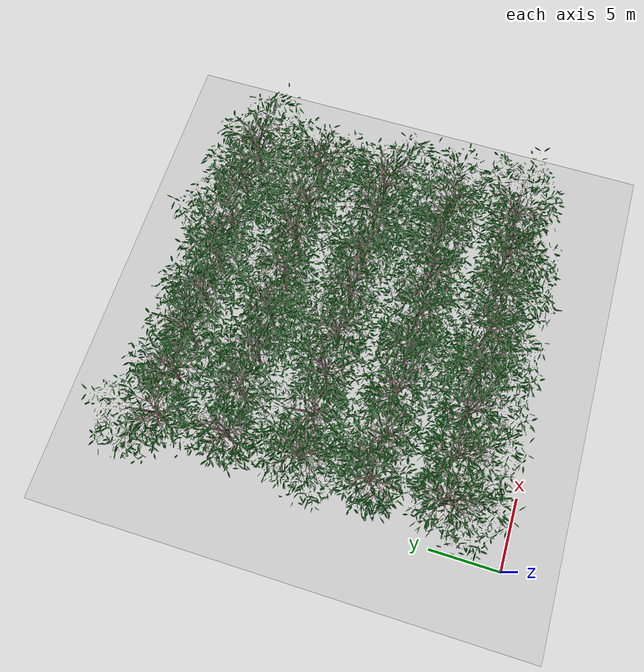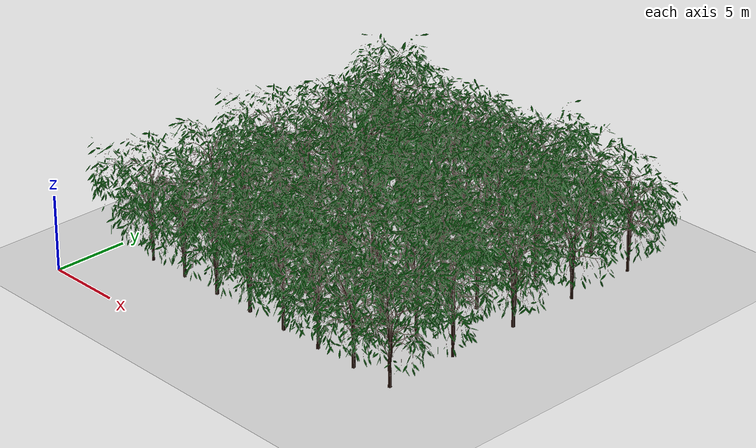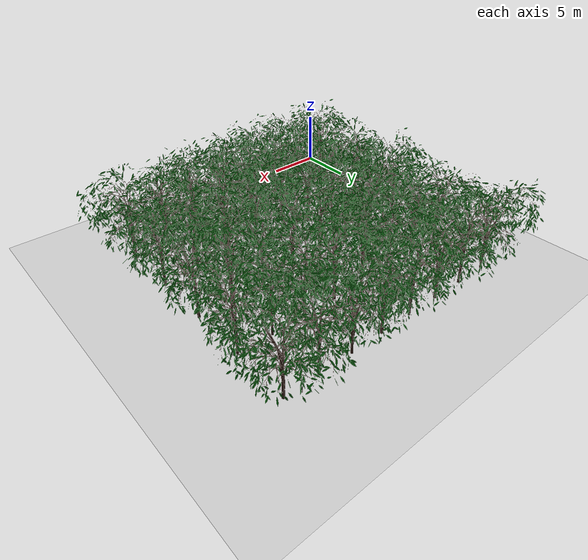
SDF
<sdf version="1.6">
 <world name="default">
  <light name="sun" type="directional">
   <pose>0 0 10 0 -0 0</pose>
   <diffuse>0.8 0.8 0.8 1</diffuse>
   <specular>0.1 0.1 0.1 1</specular>
   <attenuation>
    <range>1000</range>
    <constant>0.9</constant>
    <linear>0.01</linear>
    <quadratic>0.001</quadratic>
   </attenuation>
   <direction>-0.5 0.5 -1</direction>
  </light>
  <model name="ground_plane">
   <static>1</static>
   <link name="link">
    <collision name="collision">
     <geometry><plane><normal>0 0 1</normal><size>100 100</size></plane></geometry>
     <surface><friction><ode><mu>100</mu><mu2>50</mu2></ode></friction></surface>
    </collision>
    <visual name="visual">
     <cast_shadows>0</cast_shadows>
     <geometry><plane><normal>0 0 1</normal><size>100 100</size></plane></geometry>
     <material>
      <script><uri>file://media/materials/scripts/gazebo.material</uri><name>Gazebo/Grey</name></script>
     </material>
    </visual>
   </link>
  </model>
  <gravity>0 0 -9.8</gravity>
  <magnetic_field>6e-06 2.3e-05 -4.2e-05</magnetic_field>
  <atmosphere type="adiabatic"/>
  <physics name="default_physics" default="0" type="ode">
   <max_step_size>0.001</max_step_size>
   <real_time_factor>1</real_time_factor>
   <real_time_update_rate>1000</real_time_update_rate>
  </physics>
  <scene><ambient>0.4 0.4 0.4 1</ambient><background>0.7 0.7 0.7 1</background><shadows>1</shadows></scene>
  <spherical_coordinates>
   <surface_model>EARTH_WGS84</surface_model>
   <latitude_deg>0</latitude_deg>
   <longitude_deg>0</longitude_deg>
   <elevation>0</elevation>
   <heading_deg>0</heading_deg>
  </spherical_coordinates>
  <model name="unit_cylinder_0">
   <static>1</static>
   <link name="link">
    <inertial>
     <mass>100</mass>
     <inertia><ixx>16.67</ixx><ixy>0</ixy><ixz>0</ixz><iyy>6.67</iyy><iyz>0</iyz><izz>16.67</izz></inertia>
    </inertial>
    <collision name="collision">
     <geometry><mesh><uri>model://tree/meshes/tree.dae</uri><scale>1 1 1</scale></mesh></geometry>
    </collision>
    <visual name="visual">
     <geometry><mesh><uri>model://tree/meshes/tree.dae</uri><scale>1 1 1</scale></mesh></geometry>
    </visual>
   </link>
   <pose>3 5 0 0 0 -1.21849</pose>
  </model>
  <model name="unit_cylinder_1">
   <static>1</static>
   <link name="link">
    <inertial>
     <mass>100</mass>
     <inertia><ixx>16.67</ixx><ixy>0</ixy><ixz>0</ixz><iyy>6.67</iyy><iyz>0</iyz><izz>16.67</izz></inertia>
    </inertial>
    <collision name="collision">
     <geometry><mesh><uri>model://tree/meshes/tree.dae</uri><scale>1 1 1</scale></mesh></geometry>
    </collision>
    <visual name="visual">
     <geometry><mesh><uri>model://tree/meshes/tree.dae</uri><scale>1 1 1</scale></mesh></geometry>
    </visual>
   </link>
   <pose>6 5 0 0 0 -0.923</pose>
  </model>
  <model name="unit_cylinder_2">
   <static>1</static>
   <link name="link">
    <inertial>
     <mass>100</mass>
     <inertia><ixx>16.67</ixx><ixy>0</ixy><ixz>0</ixz><iyy>6.67</iyy><iyz>0</iyz><izz>16.67</izz></inertia>
    </inertial>
    <collision name="collision">
     <geometry><mesh><uri>model://tree/meshes/tree.dae</uri><scale>1 1 1</scale></mesh></geometry>
    </collision>
    <visual name="visual">
     <geometry><mesh><uri>model://tree/meshes/tree.dae</uri><scale>1 1 1</scale></mesh></geometry>
    </visual>
   </link>
   <pose>9 5 0 0 0 -0.426947</pose>
  </model>
  <model name="unit_cylinder_3">
   <static>1</static>
   <link name="link">
    <inertial>
     <mass>100</mass>
     <inertia><ixx>16.67</ixx><ixy>0</ixy><ixz>0</ixz><iyy>6.67</iyy><iyz>0</iyz><izz>16.67</izz></inertia>
    </inertial>
    <collision name="collision">
     <geometry><mesh><uri>model://tree/meshes/tree.dae</uri><scale>1 1 1</scale></mesh></geometry>
    </collision>
    <visual name="visual">
     <geometry><mesh><uri>model://tree/meshes/tree.dae</uri><scale>1 1 1</scale></mesh></geometry>
    </visual>
   </link>
   <pose>12 5 0 0 0 -0.539306</pose>
  </model>
  <model name="unit_cylinder_4">
   <static>1</static>
   <link name="link">
    <inertial>
     <mass>100</mass>
     <inertia><ixx>16.67</ixx><ixy>0</ixy><ixz>0</ixz><iyy>6.67</iyy><iyz>0</iyz><izz>16.67</izz></inertia>
    </inertial>
    <collision name="collision">
     <geometry><mesh><uri>model://tree/meshes/tree.dae</uri><scale>1 1 1</scale></mesh></geometry>
    </collision>
    <visual name="visual">
     <geometry><mesh><uri>model://tree/meshes/tree.dae</uri><scale>1 1 1</scale></mesh></geometry>
    </visual>
   </link>
   <pose>15 5 0 0 0 -2.42864</pose>
  </model>
  <model name="unit_cylinder_5">
   <static>1</static>
   <link name="link">
    <inertial>
     <mass>100</mass>
     <inertia><ixx>16.67</ixx><ixy>0</ixy><ixz>0</ixz><iyy>6.67</iyy><iyz>0</iyz><izz>16.67</izz></inertia>
    </inertial>
    <collision name="collision">
     <geometry><mesh><uri>model://tree/meshes/tree.dae</uri><scale>1 1 1</scale></mesh></geometry>
    </collision>
    <visual name="visual">
     <geometry><mesh><uri>model://tree/meshes/tree.dae</uri><scale>1 1 1</scale></mesh></geometry>
    </visual>
   </link>
   <pose>18 5 0 0 0 -1.76276</pose>
  </model>
  <model name="unit_cylinder_6">
   <static>1</static>
   <link name="link">
    <inertial>
     <mass>100</mass>
     <inertia><ixx>16.67</ixx><ixy>0</ixy><ixz>0</ixz><iyy>6.67</iyy><iyz>0</iyz><izz>16.67</izz></inertia>
    </inertial>
    <collision name="collision">
     <geometry><mesh><uri>model://tree/meshes/tree.dae</uri><scale>1 1 1</scale></mesh></geometry>
    </collision>
    <visual name="visual">
     <geometry><mesh><uri>model://tree/meshes/tree.dae</uri><scale>1 1 1</scale></mesh></geometry>
    </visual>
   </link>
   <pose>21 5 0 0 0 -2.00913</pose>
  </model>
  <model name="unit_cylinder_7">
   <static>1</static>
   <link name="link">
    <inertial>
     <mass>100</mass>
     <inertia><ixx>16.67</ixx><ixy>0</ixy><ixz>0</ixz><iyy>6.67</iyy><iyz>0</iyz><izz>16.67</izz></inertia>
    </inertial>
    <collision name="collision">
     <geometry><mesh><uri>model://tree/meshes/tree.dae</uri><scale>1 1 1</scale></mesh></geometry>
    </collision>
    <visual name="visual">
     <geometry><mesh><uri>model://tree/meshes/tree.dae</uri><scale>1 1 1</scale></mesh></geometry>
    </visual>
   </link>
   <pose>24 5 0 0 -0 1.25747</pose>
  </model>
  <model name="unit_cylinder_8">
   <static>1</static>
   <link name="link">
    <inertial>
     <mass>100</mass>
     <inertia><ixx>16.67</ixx><ixy>0</ixy><ixz>0</ixz><iyy>6.67</iyy><iyz>0</iyz><izz>16.67</izz></inertia>
    </inertial>
    <collision name="collision">
     <geometry><mesh><uri>model://tree/meshes/tree.dae</uri><scale>1 1 1</scale></mesh></geometry>
    </collision>
    <visual name="visual">
     <geometry><mesh><uri>model://tree/meshes/tree.dae</uri><scale>1 1 1</scale></mesh></geometry>
    </visual>
   </link>
   <pose>24 10 0 0 0 -3.03898</pose>
  </model>
  <model name="unit_cylinder_9">
   <static>1</static>
   <link name="link">
    <inertial>
     <mass>100</mass>
     <inertia><ixx>16.67</ixx><ixy>0</ixy><ixz>0</ixz><iyy>6.67</iyy><iyz>0</iyz><izz>16.67</izz></inertia>
    </inertial>
    <collision name="collision">
     <geometry><mesh><uri>model://tree/meshes/tree.dae</uri><scale>1 1 1</scale></mesh></geometry>
    </collision>
    <visual name="visual">
     <geometry><mesh><uri>model://tree/meshes/tree.dae</uri><scale>1 1 1</scale></mesh></geometry>
    </visual>
   </link>
   <pose>21 10 0 0 -0 1.41879</pose>
  </model>
  <model name="unit_cylinder_10">
   <static>1</static>
   <link name="link">
    <inertial>
     <mass>100</mass>
     <inertia><ixx>16.67</ixx><ixy>0</ixy><ixz>0</ixz><iyy>6.67</iyy><iyz>0</iyz><izz>16.67</izz></inertia>
    </inertial>
    <collision name="collision">
     <geometry><mesh><uri>model://tree/meshes/tree.dae</uri><scale>1 1 1</scale></mesh></geometry>
    </collision>
    <visual name="visual">
     <geometry><mesh><uri>model://tree/meshes/tree.dae</uri><scale>1 1 1</scale></mesh></geometry>
    </visual>
   </link>
   <pose>18 10 0 0 0 -2.48242</pose>
  </model>
  <model name="unit_cylinder_11">
   <static>1</static>
   <link name="link">
    <inertial>
     <mass>100</mass>
     <inertia><ixx>16.67</ixx><ixy>0</ixy><ixz>0</ixz><iyy>6.67</iyy><iyz>0</iyz><izz>16.67</izz></inertia>
    </inertial>
    <collision name="collision">
     <geometry><mesh><uri>model://tree/meshes/tree.dae</uri><scale>1 1 1</scale></mesh></geometry>
    </collision>
    <visual name="visual">
     <geometry><mesh><uri>model://tree/meshes/tree.dae</uri><scale>1 1 1</scale></mesh></geometry>
    </visual>
   </link>
   <pose>15 10 0 0 0 -2.58627</pose>
  </model>
  <model name="unit_cylinder_12">
   <static>1</static>
   <link name="link">
    <inertial>
     <mass>100</mass>
     <inertia><ixx>16.67</ixx><ixy>0</ixy><ixz>0</ixz><iyy>6.67</iyy><iyz>0</iyz><izz>16.67</izz></inertia>
    </inertial>
    <collision name="collision">
     <geometry><mesh><uri>model://tree/meshes/tree.dae</uri><scale>1 1 1</scale></mesh></geometry>
    </collision>
    <visual name="visual">
     <geometry><mesh><uri>model://tree/meshes/tree.dae</uri><scale>1 1 1</scale></mesh></geometry>
    </visual>
   </link>
   <pose>12 10 0 0 0 -1.181</pose>
  </model>
  <model name="unit_cylinder_13">
   <static>1</static>
   <link name="link">
    <inertial>
     <mass>100</mass>
     <inertia><ixx>16.67</ixx><ixy>0</ixy><ixz>0</ixz><iyy>6.67</iyy><iyz>0</iyz><izz>16.67</izz></inertia>
    </inertial>
    <collision name="collision">
     <geometry><mesh><uri>model://tree/meshes/tree.dae</uri><scale>1 1 1</scale></mesh></geometry>
    </collision>
    <visual name="visual">
     <geometry><mesh><uri>model://tree/meshes/tree.dae</uri><scale>1 1 1</scale></mesh></geometry>
    </visual>
   </link>
   <pose>9 10 0 0 0 -0.220321</pose>
  </model>
  <model name="unit_cylinder_14">
   <static>1</static>
   <link name="link">
    <inertial>
     <mass>100</mass>
     <inertia><ixx>16.67</ixx><ixy>0</ixy><ixz>0</ixz><iyy>6.67</iyy><iyz>0</iyz><izz>16.67</izz></inertia>
    </inertial>
    <collision name="collision">
     <geometry><mesh><uri>model://tree/meshes/tree.dae</uri><scale>1 1 1</scale></mesh></geometry>
    </collision>
    <visual name="visual">
     <geometry><mesh><uri>model://tree/meshes/tree.dae</uri><scale>1 1 1</scale></mesh></geometry>
    </visual>
   </link>
   <pose>6 10 0 0 -0 2.8854</pose>
  </model>
  <model name="unit_cylinder_15">
   <static>1</static>
   <link name="link">
    <inertial>
     <mass>100</mass>
     <inertia><ixx>16.67</ixx><ixy>0</ixy><ixz>0</ixz><iyy>6.67</iyy><iyz>0</iyz><izz>16.67</izz></inertia>
    </inertial>
    <collision name="collision">
     <geometry><mesh><uri>model://tree/meshes/tree.dae</uri><scale>1 1 1</scale></mesh></geometry>
    </collision>
    <visual name="visual">
     <geometry><mesh><uri>model://tree/meshes/tree.dae</uri><scale>1 1 1</scale></mesh></geometry>
    </visual>
   </link>
   <pose>3 10 0 0 -0 1.16918</pose>
  </model>
  <model name="unit_cylinder_16">
   <static>1</static>
   <link name="link">
    <inertial>
     <mass>100</mass>
     <inertia><ixx>16.67</ixx><ixy>0</ixy><ixz>0</ixz><iyy>6.67</iyy><iyz>0</iyz><izz>16.67</izz></inertia>
    </inertial>
    <collision name="collision">
     <geometry><mesh><uri>model://tree/meshes/tree.dae</uri><scale>1 1 1</scale></mesh></geometry>
    </collision>
    <visual name="visual">
     <geometry><mesh><uri>model://tree/meshes/tree.dae</uri><scale>1 1 1</scale></mesh></geometry>
    </visual>
   </link>
   <pose>3 15 0 0 0 -1.25247</pose>
  </model>
  <model name="unit_cylinder_17">
   <static>1</static>
   <link name="link">
    <inertial>
     <mass>100</mass>
     <inertia><ixx>16.67</ixx><ixy>0</ixy><ixz>0</ixz><iyy>6.67</iyy><iyz>0</iyz><izz>16.67</izz></inertia>
    </inertial>
    <collision name="collision">
     <geometry><mesh><uri>model://tree/meshes/tree.dae</uri><scale>1 1 1</scale></mesh></geometry>
    </collision>
    <visual name="visual">
     <geometry><mesh><uri>model://tree/meshes/tree.dae</uri><scale>1 1 1</scale></mesh></geometry>
    </visual>
   </link>
   <pose>6 15 0 0 -0 3.04037</pose>
  </model>
  <model name="unit_cylinder_18">
   <static>1</static>
   <link name="link">
    <inertial>
     <mass>100</mass>
     <inertia><ixx>16.67</ixx><ixy>0</ixy><ixz>0</ixz><iyy>6.67</iyy><iyz>0</iyz><izz>16.67</izz></inertia>
    </inertial>
    <collision name="collision">
     <geometry><mesh><uri>model://tree/meshes/tree.dae</uri><scale>1 1 1</scale></mesh></geometry>
    </collision>
    <visual name="visual">
     <geometry><mesh><uri>model://tree/meshes/tree.dae</uri><scale>1 1 1</scale></mesh></geometry>
    </visual>
   </link>
   <pose>9 15 0 0 -0 1.35368</pose>
  </model>
  <model name="unit_cylinder_19">
   <static>1</static>
   <link name="link">
    <inertial>
     <mass>100</mass>
     <inertia><ixx>16.67</ixx><ixy>0</ixy><ixz>0</ixz><iyy>6.67</iyy><iyz>0</iyz><izz>16.67</izz></inertia>
    </inertial>
    <collision name="collision">
     <geometry><mesh><uri>model://tree/meshes/tree.dae</uri><scale>1 1 1</scale></mesh></geometry>
    </collision>
    <visual name="visual">
     <geometry><mesh><uri>model://tree/meshes/tree.dae</uri><scale>1 1 1</scale></mesh></geometry>
    </visual>
   </link>
   <pose>12 15 0 0 -0 1.90245</pose>
  </model>
  <model name="unit_cylinder_20">
   <static>1</static>
   <link name="link">
    <inertial>
     <mass>100</mass>
     <inertia><ixx>16.67</ixx><ixy>0</ixy><ixz>0</ixz><iyy>6.67</iyy><iyz>0</iyz><izz>16.67</izz></inertia>
    </inertial>
    <collision name="collision">
     <geometry><mesh><uri>model://tree/meshes/tree.dae</uri><scale>1 1 1</scale></mesh></geometry>
    </collision>
    <visual name="visual">
     <geometry><mesh><uri>model://tree/meshes/tree.dae</uri><scale>1 1 1</scale></mesh></geometry>
    </visual>
   </link>
   <pose>15 15 0 0 -0 0.589286</pose>
  </model>
  <model name="unit_cylinder_21">
   <static>1</static>
   <link name="link">
    <inertial>
     <mass>100</mass>
     <inertia><ixx>16.67</ixx><ixy>0</ixy><ixz>0</ixz><iyy>6.67</iyy><iyz>0</iyz><izz>16.67</izz></inertia>
    </inertial>
    <collision name="collision">
     <geometry><mesh><uri>model://tree/meshes/tree.dae</uri><scale>1 1 1</scale></mesh></geometry>
    </collision>
    <visual name="visual">
     <geometry><mesh><uri>model://tree/meshes/tree.dae</uri><scale>1 1 1</scale></mesh></geometry>
    </visual>
   </link>
   <pose>18 15 0 0 0 -0.152941</pose>
  </model>
  <model name="unit_cylinder_22">
   <static>1</static>
   <link name="link">
    <inertial>
     <mass>100</mass>
     <inertia><ixx>16.67</ixx><ixy>0</ixy><ixz>0</ixz><iyy>6.67</iyy><iyz>0</iyz><izz>16.67</izz></inertia>
    </inertial>
    <collision name="collision">
     <geometry><mesh><uri>model://tree/meshes/tree.dae</uri><scale>1 1 1</scale></mesh></geometry>
    </collision>
    <visual name="visual">
     <geometry><mesh><uri>model://tree/meshes/tree.dae</uri><scale>1 1 1</scale></mesh></geometry>
    </visual>
   </link>
   <pose>21 15 0 0 0 -2.14999</pose>
  </model>
  <model name="unit_cylinder_23">
   <static>1</static>
   <link name="link">
    <inertial>
     <mass>100</mass>
     <inertia><ixx>16.67</ixx><ixy>0</ixy><ixz>0</ixz><iyy>6.67</iyy><iyz>0</iyz><izz>16.67</izz></inertia>
    </inertial>
    <collision name="collision">
     <geometry><mesh><uri>model://tree/meshes/tree.dae</uri><scale>1 1 1</scale></mesh></geometry>
    </collision>
    <visual name="visual">
     <geometry><mesh><uri>model://tree/meshes/tree.dae</uri><scale>1 1 1</scale></mesh></geometry>
    </visual>
   </link>
   <pose>24 15 0 0 0 -0.650542</pose>
  </model>
  <model name="unit_cylinder_24">
   <static>1</static>
   <link name="link">
    <inertial>
     <mass>100</mass>
     <inertia><ixx>16.67</ixx><ixy>0</ixy><ixz>0</ixz><iyy>6.67</iyy><iyz>0</iyz><izz>16.67</izz></inertia>
    </inertial>
    <collision name="collision">
     <geometry><mesh><uri>model://tree/meshes/tree.dae</uri><scale>1 1 1</scale></mesh></geometry>
    </collision>
    <visual name="visual">
     <geometry><mesh><uri>model://tree/meshes/tree.dae</uri><scale>1 1 1</scale></mesh></geometry>
    </visual>
   </link>
   <pose>24 20 0 0 0 -1.34159</pose>
  </model>
  <model name="unit_cylinder_25">
   <static>1</static>
   <link name="link">
    <inertial>
     <mass>100</mass>
     <inertia><ixx>16.67</ixx><ixy>0</ixy><ixz>0</ixz><iyy>6.67</iyy><iyz>0</iyz><izz>16.67</izz></inertia>
    </inertial>
    <collision name="collision">
     <geometry><mesh><uri>model://tree/meshes/tree.dae</uri><scale>1 1 1</scale></mesh></geometry>
    </collision>
    <visual name="visual">
     <geometry><mesh><uri>model://tree/meshes/tree.dae</uri><scale>1 1 1</scale></mesh></geometry>
    </visual>
   </link>
   <pose>21 20 0 0 -0 1.9578</pose>
  </model>
  <model name="unit_cylinder_26">
   <static>1</static>
   <link name="link">
    <inertial>
     <mass>100</mass>
     <inertia><ixx>16.67</ixx><ixy>0</ixy><ixz>0</ixz><iyy>6.67</iyy><iyz>0</iyz><izz>16.67</izz></inertia>
    </inertial>
    <collision name="collision">
     <geometry><mesh><uri>model://tree/meshes/tree.dae</uri><scale>1 1 1</scale></mesh></geometry>
    </collision>
    <visual name="visual">
     <geometry><mesh><uri>model://tree/meshes/tree.dae</uri><scale>1 1 1</scale></mesh></geometry>
    </visual>
   </link>
   <pose>18 20 0 0 -0 1.14201</pose>
  </model>
  <model name="unit_cylinder_27">
   <static>1</static>
   <link name="link">
    <inertial>
     <mass>100</mass>
     <inertia><ixx>16.67</ixx><ixy>0</ixy><ixz>0</ixz><iyy>6.67</iyy><iyz>0</iyz><izz>16.67</izz></inertia>
    </inertial>
    <collision name="collision">
     <geometry><mesh><uri>model://tree/meshes/tree.dae</uri><scale>1 1 1</scale></mesh></geometry>
    </collision>
    <visual name="visual">
     <geometry><mesh><uri>model://tree/meshes/tree.dae</uri><scale>1 1 1</scale></mesh></geometry>
    </visual>
   </link>
   <pose>15 20 0 0 0 -2.25349</pose>
  </model>
  <model name="unit_cylinder_28">
   <static>1</static>
   <link name="link">
    <inertial>
     <mass>100</mass>
     <inertia><ixx>16.67</ixx><ixy>0</ixy><ixz>0</ixz><iyy>6.67</iyy><iyz>0</iyz><izz>16.67</izz></inertia>
    </inertial>
    <collision name="collision">
     <geometry><mesh><uri>model://tree/meshes/tree.dae</uri><scale>1 1 1</scale></mesh></geometry>
    </collision>
    <visual name="visual">
     <geometry><mesh><uri>model://tree/meshes/tree.dae</uri><scale>1 1 1</scale></mesh></geometry>
    </visual>
   </link>
   <pose>12 20 0 0 -0 1.25935</pose>
  </model>
  <model name="unit_cylinder_29">
   <static>1</static>
   <link name="link">
    <inertial>
     <mass>100</mass>
     <inertia><ixx>16.67</ixx><ixy>0</ixy><ixz>0</ixz><iyy>6.67</iyy><iyz>0</iyz><izz>16.67</izz></inertia>
    </inertial>
    <collision name="collision">
     <geometry><mesh><uri>model://tree/meshes/tree.dae</uri><scale>1 1 1</scale></mesh></geometry>
    </collision>
    <visual name="visual">
     <geometry><mesh><uri>model://tree/meshes/tree.dae</uri><scale>1 1 1</scale></mesh></geometry>
    </visual>
   </link>
   <pose>9 20 0 0 0 -0.18664</pose>
  </model>
  <model name="unit_cylinder_30">
   <static>1</static>
   <link name="link">
    <inertial>
     <mass>100</mass>
     <inertia><ixx>16.67</ixx><ixy>0</ixy><ixz>0</ixz><iyy>6.67</iyy><iyz>0</iyz><izz>16.67</izz></inertia>
    </inertial>
    <collision name="collision">
     <geometry><mesh><uri>model://tree/meshes/tree.dae</uri><scale>1 1 1</scale></mesh></geometry>
    </collision>
    <visual name="visual">
     <geometry><mesh><uri>model://tree/meshes/tree.dae</uri><scale>1 1 1</scale></mesh></geometry>
    </visual>
   </link>
   <pose>6 20 0 0 -0 0.902226</pose>
  </model>
  <model name="unit_cylinder_31">
   <static>1</static>
   <link name="link">
    <inertial>
     <mass>100</mass>
     <inertia><ixx>16.67</ixx><ixy>0</ixy><ixz>0</ixz><iyy>6.67</iyy><iyz>0</iyz><izz>16.67</izz></inertia>
    </inertial>
    <collision name="collision">
     <geometry><mesh><uri>model://tree/meshes/tree.dae</uri><scale>1 1 1</scale></mesh></geometry>
    </collision>
    <visual name="visual">
     <geometry><mesh><uri>model://tree/meshes/tree.dae</uri><scale>1 1 1</scale></mesh></geometry>
    </visual>
   </link>
   <pose>3 20 0 0 -0 1.8833</pose>
  </model>
  <model name="unit_cylinder_32">
   <static>1</static>
   <link name="link">
    <inertial>
     <mass>100</mass>
     <inertia><ixx>16.67</ixx><ixy>0</ixy><ixz>0</ixz><iyy>6.67</iyy><iyz>0</iyz><izz>16.67</izz></inertia>
    </inertial>
    <collision name="collision">
     <geometry><mesh><uri>model://tree/meshes/tree.dae</uri><scale>1 1 1</scale></mesh></geometry>
    </collision>
    <visual name="visual">
     <geometry><mesh><uri>model://tree/meshes/tree.dae</uri><scale>1 1 1</scale></mesh></geometry>
    </visual>
   </link>
   <pose>3 25 0 0 -0 3.06486</pose>
  </model>
  <model name="unit_cylinder_33">
   <static>1</static>
   <link name="link">
    <inertial>
     <mass>100</mass>
     <inertia><ixx>16.67</ixx><ixy>0</ixy><ixz>0</ixz><iyy>6.67</iyy><iyz>0</iyz><izz>16.67</izz></inertia>
    </inertial>
    <collision name="collision">
     <geometry><mesh><uri>model://tree/meshes/tree.dae</uri><scale>1 1 1</scale></mesh></geometry>
    </collision>
    <visual name="visual">
     <geometry><mesh><uri>model://tree/meshes/tree.dae</uri><scale>1 1 1</scale></mesh></geometry>
    </visual>
   </link>
   <pose>6 25 0 0 0 -0.239502</pose>
  </model>
  <model name="unit_cylinder_34">
   <static>1</static>
   <link name="link">
    <inertial>
     <mass>100</mass>
     <inertia><ixx>16.67</ixx><ixy>0</ixy><ixz>0</ixz><iyy>6.67</iyy><iyz>0</iyz><izz>16.67</izz></inertia>
    </inertial>
    <collision name="collision">
     <geometry><mesh><uri>model://tree/meshes/tree.dae</uri><scale>1 1 1</scale></mesh></geometry>
    </collision>
    <visual name="visual">
     <geometry><mesh><uri>model://tree/meshes/tree.dae</uri><scale>1 1 1</scale></mesh></geometry>
    </visual>
   </link>
   <pose>9 25 0 0 -0 0.464807</pose>
  </model>
  <model name="unit_cylinder_35">
   <static>1</static>
   <link name="link">
    <inertial>
     <mass>100</mass>
     <inertia><ixx>16.67</ixx><ixy>0</ixy><ixz>0</ixz><iyy>6.67</iyy><iyz>0</iyz><izz>16.67</izz></inertia>
    </inertial>
    <collision name="collision">
     <geometry><mesh><uri>model://tree/meshes/tree.dae</uri><scale>1 1 1</scale></mesh></geometry>
    </collision>
    <visual name="visual">
     <geometry><mesh><uri>model://tree/meshes/tree.dae</uri><scale>1 1 1</scale></mesh></geometry>
    </visual>
   </link>
   <pose>12 25 0 0 -0 0.044126</pose>
  </model>
  <model name="unit_cylinder_36">
   <static>1</static>
   <link name="link">
    <inertial>
     <mass>100</mass>
     <inertia><ixx>16.67</ixx><ixy>0</ixy><ixz>0</ixz><iyy>6.67</iyy><iyz>0</iyz><izz>16.67</izz></inertia>
    </inertial>
    <collision name="collision">
     <geometry><mesh><uri>model://tree/meshes/tree.dae</uri><scale>1 1 1</scale></mesh></geometry>
    </collision>
    <visual name="visual">
     <geometry><mesh><uri>model://tree/meshes/tree.dae</uri><scale>1 1 1</scale></mesh></geometry>
    </visual>
   </link>
   <pose>15 25 0 0 -0 0.704462</pose>
  </model>
  <model name="unit_cylinder_37">
   <static>1</static>
   <link name="link">
    <inertial>
     <mass>100</mass>
     <inertia><ixx>16.67</ixx><ixy>0</ixy><ixz>0</ixz><iyy>6.67</iyy><iyz>0</iyz><izz>16.67</izz></inertia>
    </inertial>
    <collision name="collision">
     <geometry><mesh><uri>model://tree/meshes/tree.dae</uri><scale>1 1 1</scale></mesh></geometry>
    </collision>
    <visual name="visual">
     <geometry><mesh><uri>model://tree/meshes/tree.dae</uri><scale>1 1 1</scale></mesh></geometry>
    </visual>
   </link>
   <pose>18 25 0 0 0 -2.90544</pose>
  </model>
  <model name="unit_cylinder_38">
   <static>1</static>
   <link name="link">
    <inertial>
     <mass>100</mass>
     <inertia><ixx>16.67</ixx><ixy>0</ixy><ixz>0</ixz><iyy>6.67</iyy><iyz>0</iyz><izz>16.67</izz></inertia>
    </inertial>
    <collision name="collision">
     <geometry><mesh><uri>model://tree/meshes/tree.dae</uri><scale>1 1 1</scale></mesh></geometry>
    </collision>
    <visual name="visual">
     <geometry><mesh><uri>model://tree/meshes/tree.dae</uri><scale>1 1 1</scale></mesh></geometry>
    </visual>
   </link>
   <pose>21 25 0 0 0 -0.8221</pose>
  </model>
  <model name="unit_cylinder_39">
   <static>1</static>
   <link name="link">
    <inertial>
     <mass>100</mass>
     <inertia><ixx>16.67</ixx><ixy>0</ixy><ixz>0</ixz><iyy>6.67</iyy><iyz>0</iyz><izz>16.67</izz></inertia>
    </inertial>
    <collision name="collision">
     <geometry><mesh><uri>model://tree/meshes/tree.dae</uri><scale>1 1 1</scale></mesh></geometry>
    </collision>
    <visual name="visual">
     <geometry><mesh><uri>model://tree/meshes/tree.dae</uri><scale>1 1 1</scale></mesh></geometry>
    </visual>
   </link>
   <pose>24 25 0 0 0 -0.120328</pose>
  </model>
 </world>
</sdf>
